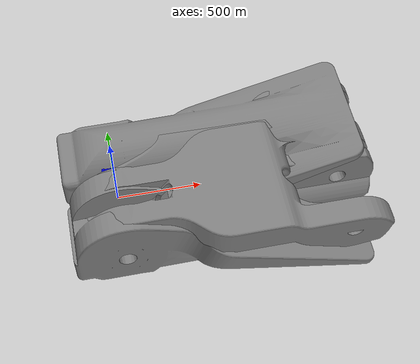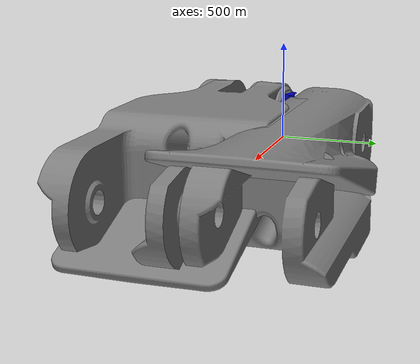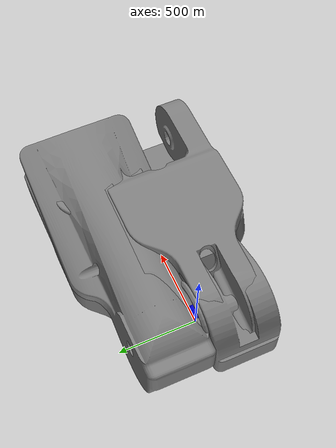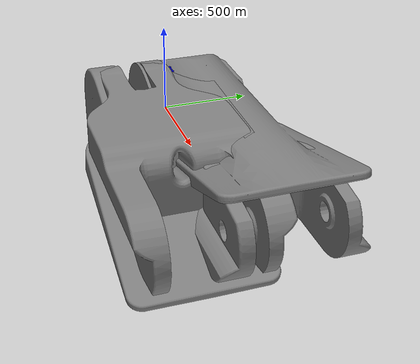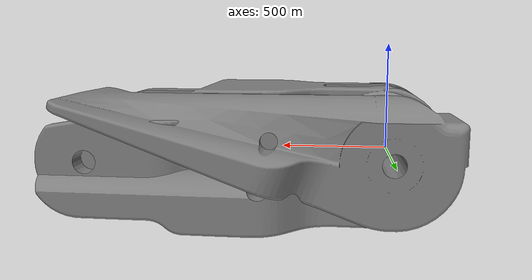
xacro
<?xml version="1.0" encoding="UTF-8"?>
<robot name="ezgripper_dual_gen2" xmlns:xacro="http://ros.org/wiki/xacro">

	<xacro:property name="ezgripper_offset_x" value="0.02"/>
	<xacro:property name="ezgripper_offset_y" value="0.0"/>
	<xacro:property name="ezgripper_offset_z" value="0.3"/>

	<xacro:include filename="$(find ezgripper_driver)/urdf/materials.urdf.xacro"/>
	<xacro:include filename="$(find ezgripper_driver)/urdf/dual_gen2/ezgripper_dual_gen2_articulated.urdf.xacro"/>

	<!-- Add the gripper -->
	<xacro:ezgripper_dual_gen2 prefix="left" parent_link="base_link">
		<origin xyz="${ezgripper_offset_x} ${ezgripper_offset_y} ${ezgripper_offset_z}" rpy="0 0 0"/>
	</xacro:ezgripper_dual_gen2>

	<link name="world"/>

	<joint name="fixed" type="fixed">
		<parent link="world"/>
		<child link="base_link"/>
	</joint>

	<link name="base_link">
		<visual>
				<geometry>
						<cylinder length="0.42" radius="0.02"/>
					</geometry>
					<origin rpy="0 0 0" xyz="0 0 0.21"/>
					<material name="black"/>
			</visual>
			<collision>
				<geometry>
						<cylinder length="0.42" radius="0.02"/>
				</geometry>
				<origin rpy="0 0 0" xyz="0 0 0.21"/>
			</collision>
	</link>

	<gazebo reference="base_link">
		<material>Gazebo/Black</material>
	</gazebo>

</robot>

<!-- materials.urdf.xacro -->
<robot name="ezgripper" xmlns:xacro="http://ros.org/wiki/xacro">

  <material name="black">
    <color rgba="0.0 0.0 0.0 1.0"/>
  </material>

  <material name="blue">
    <color rgba="0.0 0.0 0.8 1.0"/>
  </material>

  <material name="grey">
    <color rgba="0.5 0.5 0.5 1"/>
  </material>

</robot>

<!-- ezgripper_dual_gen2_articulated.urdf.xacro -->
<robot name="ezgripper_dual_gen2" xmlns:xacro="http://ros.org/wiki/xacro">

	<xacro:macro name="ezgripper_dual_gen2" params="prefix parent_link *origin">

			<!-- links -->

			<link name="${prefix}_ezgripper_palm_link">
				<visual>
					<origin xyz="0 0 0" rpy="0 0 0"/>
					<geometry>
						<mesh filename="package://ezgripper_driver/meshes/dual_gen2/SAKE_Palm_Dual_Gen2.stl"/>
					</geometry>
					<material name="blue"/>
				</visual>
				<collision>
					<origin xyz="0 0 0" rpy="0 0 0"/>
					<geometry>
						<mesh filename="package://ezgripper_driver/meshes/dual_gen2/SAKE_Palm_Dual_Gen2.stl"/>
					</geometry>
				</collision>
				<inertial>
					<mass value=".3"/>
					<inertia ixx="0.01" ixy="0.0" ixz="0.0" iyy="0.01" iyz="0.0" izz="0.01"/>
				</inertial>
			</link>

			<gazebo reference="${prefix}_ezgripper_palm_link">
				<material>Gazebo/Blue</material>
		</gazebo>

			<joint name="${prefix}_ezgripper_connect" type="fixed">
					<xacro:insert_block name="origin" />
					<parent link="${parent_link}"/>
					<child link="${prefix}_ezgripper_palm_link"/>
					<axis xyz="0 0 0"/>
			</joint>

			<xacro:ezgripper_finger_L1 prefix="${prefix}" postfix="1" reflect="1" />
			<xacro:ezgripper_finger_L1 prefix="${prefix}" postfix="2" reflect="1" />

			<xacro:ezgripper_finger_L2 prefix="${prefix}" postfix="1" reflect="1" />
			<xacro:ezgripper_finger_L2 prefix="${prefix}" postfix="2" reflect="1" />

			<!-- Mimic Test has to be set false for the first joint -->
			<xacro:ezgripper_knuckle_palm_L1 prefix="${prefix}" postfix="1" reflectY="1" reflectZ="1" reflectR="1" mimic_test="false" />
			<xacro:ezgripper_knuckle_palm_L1 prefix="${prefix}" postfix="2" reflectY="-1" reflectZ="1" reflectR="-1" mimic_test="true" />

			<xacro:ezgripper_knuckle_L1_L2 prefix="${prefix}" postfix="1" reflectY="1" reflectZ="1" reflectR="-1" />
			<xacro:ezgripper_knuckle_L1_L2 prefix="${prefix}" postfix="2" reflectY="-1" reflectZ="1" reflectR="1" />

			<!-- Transmission needs to be removed when mimicked -->
			<xacro:ezgripper_knuckle_palm_trans prefix="${prefix}" postfix="L1_1"/>

			<xacro:gazebo_knuckle_jsp prefix="${prefix}" />

	</xacro:macro>

	<xacro:macro name="ezgripper_finger_L1" params="prefix postfix reflect">
			<link name="${prefix}_ezgripper_finger_L1_${postfix}">
				<visual>
					<origin xyz="0 0 0" rpy="0 0 0"/>
					<geometry>
						<mesh filename="package://ezgripper_driver/meshes/dual_gen2/SAKE_Finger_L1_Gen2.stl"/>
					</geometry>
					<material name="grey"/>
				</visual>
				<collision>
					<origin xyz="0 0 0" rpy="0 0 0"/>
					<geometry>
						<mesh filename="package://ezgripper_driver/meshes/dual_gen2/SAKE_Finger_L1_Gen2.stl"/>
					</geometry>
				</collision>
				<inertial>
					<mass value=".025"/>
					<inertia ixx="0.01" ixy="0.0" ixz="0.0" iyy="0.01" iyz="0.0" izz="0.01"/>
				</inertial>
			</link>

			<gazebo reference="${prefix}_ezgripper_finger_L1_${postfix}">
				<material>Gazebo/Grey</material>
		</gazebo>

	</xacro:macro>

	<xacro:macro name="ezgripper_finger_L2" params="prefix postfix reflect">
			<link name="${prefix}_ezgripper_finger_L2_${postfix}">
				<visual>
					<origin xyz="0 0 0" rpy="0 0 0"/>
					<geometry>
						<mesh filename="package://ezgripper_driver/meshes/dual_gen2/SAKE_Finger_L2_Gen2.stl"/>
					</geometry>
					<material name="grey"/>
				</visual>
				<collision>
					<origin xyz="0 0 0" rpy="0 0 0"/>
					<geometry>
						<mesh filename="package://ezgripper_driver/meshes/dual_gen2/SAKE_Finger_L2_Gen2.stl"/>
					</geometry>
				</collision>
				<inertial>
					<mass value=".025"/>
					<inertia ixx="0.01" ixy="0.0" ixz="0.0" iyy="0.01" iyz="0.0" izz="0.01"/>
				</inertial>
			</link>

			<gazebo reference="${prefix}_ezgripper_finger_L2_${postfix}">
				<material>Gazebo/Grey</material>
		</gazebo>

	</xacro:macro>

  <!-- Joints -->

	<xacro:macro name="ezgripper_knuckle_palm_L1" params="prefix postfix reflectY reflectZ reflectR mimic_test">
			<joint name="${prefix}_ezgripper_knuckle_palm_L1_${postfix}" type="revolute">
				<parent link="${prefix}_ezgripper_palm_link"/>
				<child link="${prefix}_ezgripper_finger_L1_${postfix}"/>
				<origin xyz="0.072569 ${reflectY*0.03} 0" rpy="${-1.5708 * reflectR} 0 ${1.57075 * reflectR}"/>
				<axis xyz="0 1 0"/>
				<limit lower="0" upper="1.94" effort="1.0" velocity="3.67"/>
				<xacro:if value="${mimic_test}">
						<mimic joint="${prefix}_ezgripper_knuckle_palm_L1_1"/>
				</xacro:if>
			</joint>
	</xacro:macro>

	<xacro:macro name="ezgripper_knuckle_L1_L2" params="prefix postfix reflectY reflectZ reflectR">
			<joint name="${prefix}_ezgripper_knuckle_L1_L2_${postfix}" type="fixed">
				<parent link="${prefix}_ezgripper_finger_L1_${postfix}"/>
				<child link="${prefix}_ezgripper_finger_L2_${postfix}"/>
				<origin xyz="0.052 0 0" rpy="0 0 0"/>
				<axis xyz="0 1 0"/>
			</joint>
	</xacro:macro>

  <!-- Transmissions for Gazebo -->

	<xacro:macro name="ezgripper_knuckle_palm_trans" params="prefix postfix">
		<transmission name="${prefix}_ezgripper_knuckle_palm_trans_${postfix}">
				<type>transmission_interface/SimpleTransmission</type>
				<joint name="${prefix}_ezgripper_knuckle_palm_${postfix}">
					<hardwareInterface>hardware_interface/PositionJointInterface</hardwareInterface>
				</joint>
				<actuator name="${prefix}_ezgripper_knuckle_palm_motor${postfix}">
					<mechanicalReduction>1</mechanicalReduction>
					<hardwareInterface>hardware_interface/PositionJointInterface</hardwareInterface>
				</actuator>
		</transmission>
	</xacro:macro>

	<xacro:macro name="gazebo_knuckle_jsp" params="prefix">
		<gazebo>
			<plugin name="joint_state_publisher" filename="libgazebo_ros_joint_state_publisher.so">
				<jointName>${prefix}_ezgripper_knuckle_palm_L1_1</jointName>
			</plugin>
		</gazebo>
	</xacro:macro>

	<gazebo>

		<plugin name="gazebo_ros_control" filename="libgazebo_ros_control.so">
			<robotNamespace>/ezgripper_dual_gen2</robotNamespace>
			<legacyModeNS>true</legacyModeNS>
		</plugin>

		<!-- Fix mimicking bug -->
		<plugin filename="libroboticsgroup_upatras_gazebo_mimic_joint_plugin.so" name="mimicker">
			<joint>left_ezgripper_knuckle_palm_L1_1</joint>
			<mimicJoint>left_ezgripper_knuckle_palm_L1_2</mimicJoint>
			<hasPID></hasPID>
		</plugin>

	</gazebo>

</robot>
